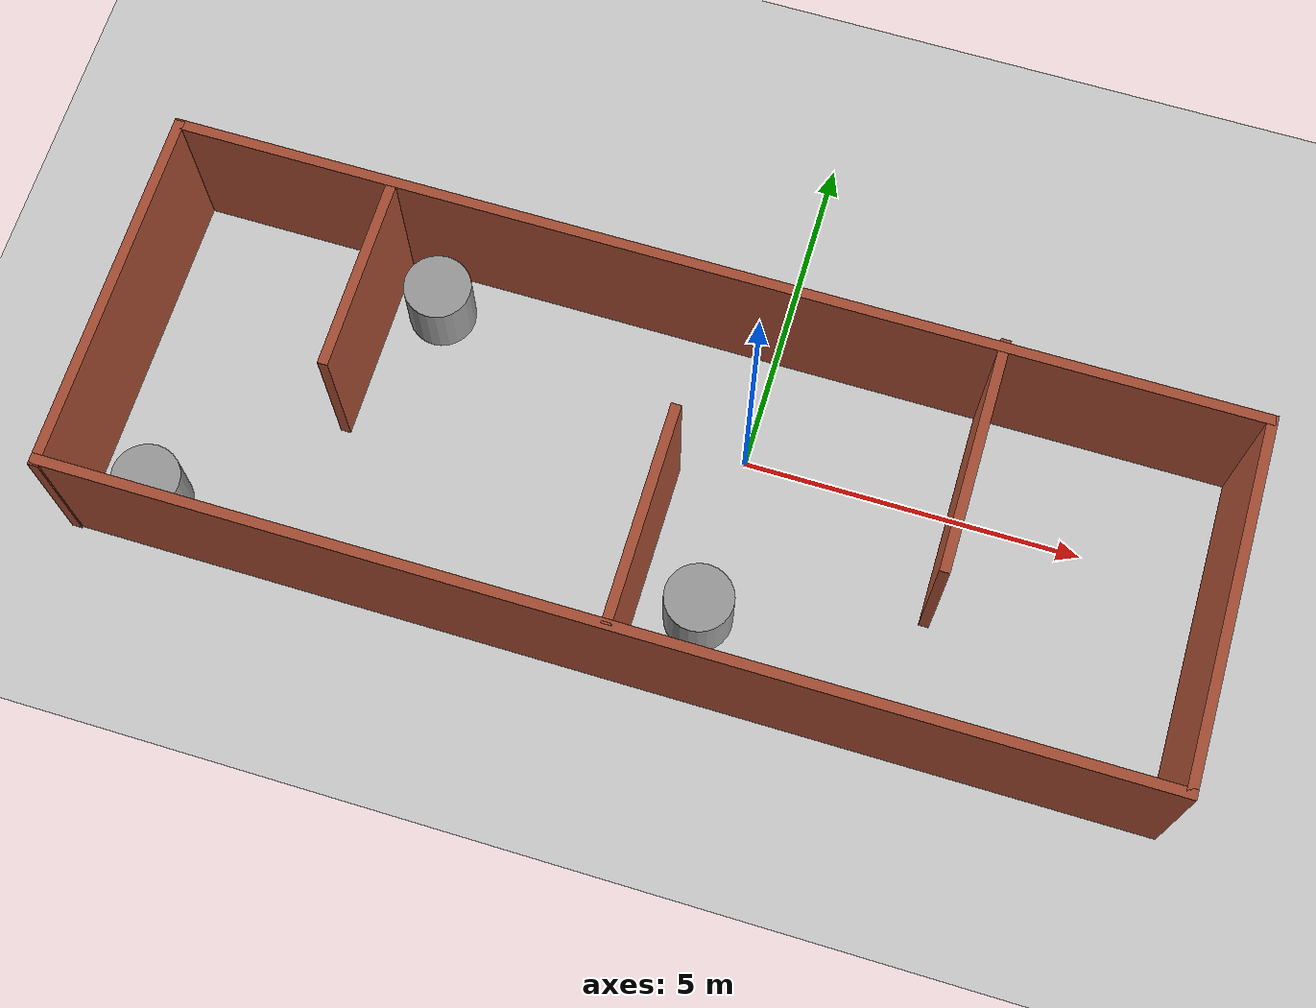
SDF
<sdf version="1.7">
 <world name="default">
  <light name="sun" type="directional">
   <pose>0 0 10 0 -0 0</pose>
   <diffuse>0.8 0.8 0.8 1</diffuse>
   <specular>0.2 0.2 0.2 1</specular>
   <attenuation>
    <range>1000</range>
    <constant>0.9</constant>
    <linear>0.01</linear>
    <quadratic>0.001</quadratic>
   </attenuation>
   <direction>-0.5 0.1 -0.9</direction>
   <spot><inner_angle>0</inner_angle><outer_angle>0</outer_angle><falloff>0</falloff></spot>
  </light>
  <model name="ground_plane">
   <static>1</static>
   <link name="link">
    <collision name="collision">
     <geometry><plane><normal>0 0 1</normal><size>100 100</size></plane></geometry>
     <surface>
      <contact><collide_bitmask>65535</collide_bitmask></contact>
      <friction><ode><mu>100</mu><mu2>50</mu2></ode></friction>
     </surface>
    </collision>
    <visual name="visual">
     <cast_shadows>0</cast_shadows>
     <geometry><plane><normal>0 0 1</normal><size>100 100</size></plane></geometry>
     <material>
      <script><uri>file://media/materials/scripts/gazebo.material</uri><name>Gazebo/Grey</name></script>
     </material>
    </visual>
   </link>
  </model>
  <gravity>0 0 -9.8</gravity>
  <magnetic_field>6e-06 2.3e-05 -4.2e-05</magnetic_field>
  <atmosphere type="adiabatic"/>
  <physics type="ode">
   <max_step_size>0.001</max_step_size>
   <real_time_factor>1</real_time_factor>
   <real_time_update_rate>1000</real_time_update_rate>
  </physics>
  <scene><ambient>0.4 0.4 0.4 1</ambient><background>0.7 0.7 0.7 1</background><shadows>1</shadows></scene>
  <spherical_coordinates>
   <surface_model>EARTH_WGS84</surface_model>
   <latitude_deg>0</latitude_deg>
   <longitude_deg>0</longitude_deg>
   <elevation>0</elevation>
   <heading_deg>0</heading_deg>
  </spherical_coordinates>
  <model name="Walls_env1">
   <link name="Wall_13">
    <pose>0.117716 -1.06231 0 0 -0 1.5708</pose>
    <visual name="Wall_13_Visual">
     <pose>0 0 1.25 0 -0 0</pose>
     <geometry><box><size>3.25 0.15 2.5</size></box></geometry>
     <material>
      <script><uri>file://media/materials/scripts/gazebo.material</uri><name>Gazebo/Bricks</name></script>
      <ambient>1 1 1 1</ambient>
      <shader type="pixel"/>
     </material>
     <meta><layer>0</layer></meta>
    </visual>
    <collision name="Wall_13_Collision">
     <pose>0 0 1.25 0 -0 0</pose>
     <geometry><box><size>3.25 0.15 2.5</size></box></geometry>
     <surface>
      <friction>
       <ode><mu>1</mu><mu2>1</mu2><fdir1>0 0 0</fdir1><slip1>0</slip1><slip2>0</slip2></ode>
       <torsional>
        <coefficient>1</coefficient>
        <patch_radius>0</patch_radius>
        <surface_radius>0</surface_radius>
        <use_patch_radius>1</use_patch_radius>
        <ode><slip>0</slip></ode>
       </torsional>
      </friction>
      <bounce><restitution_coefficient>0</restitution_coefficient><threshold>1e+06</threshold></bounce>
      <contact>
       <collide_without_contact>0</collide_without_contact>
       <collide_without_contact_bitmask>1</collide_without_contact_bitmask>
       <collide_bitmask>1</collide_bitmask>
       <ode>
        <soft_cfm>0</soft_cfm>
        <soft_erp>0.2</soft_erp>
        <kp>1e+13</kp>
        <kd>1</kd>
        <max_vel>0.01</max_vel>
        <min_depth>0</min_depth>
       </ode>
       <bullet>
        <split_impulse>1</split_impulse>
        <split_impulse_penetration_threshold>-0.01</split_impulse_penetration_threshold>
        <soft_cfm>0</soft_cfm>
        <soft_erp>0.2</soft_erp>
        <kp>1e+13</kp>
        <kd>1</kd>
       </bullet>
      </contact>
     </surface>
    </collision>
   </link>
   <link name="Wall_19">
    <pose>4.1887 1.03272 0 0 0 -1.5708</pose>
    <visual name="Wall_19_Visual">
     <pose>0 0 1.25 0 -0 0</pose>
     <geometry><box><size>3.5 0.15 2.5</size></box></geometry>
     <material>
      <script><uri>file://media/materials/scripts/gazebo.material</uri><name>Gazebo/Bricks</name></script>
      <ambient>1 1 1 1</ambient>
      <shader type="pixel"/>
     </material>
     <meta><layer>0</layer></meta>
    </visual>
    <collision name="Wall_19_Collision">
     <pose>0 0 1.25 0 -0 0</pose>
     <geometry><box><size>3.5 0.15 2.5</size></box></geometry>
     <surface>
      <friction>
       <ode><mu>1</mu><mu2>1</mu2><fdir1>0 0 0</fdir1><slip1>0</slip1><slip2>0</slip2></ode>
       <torsional>
        <coefficient>1</coefficient>
        <patch_radius>0</patch_radius>
        <surface_radius>0</surface_radius>
        <use_patch_radius>1</use_patch_radius>
        <ode><slip>0</slip></ode>
       </torsional>
      </friction>
      <bounce><restitution_coefficient>0</restitution_coefficient><threshold>1e+06</threshold></bounce>
      <contact>
       <collide_without_contact>0</collide_without_contact>
       <collide_without_contact_bitmask>1</collide_without_contact_bitmask>
       <collide_bitmask>1</collide_bitmask>
       <ode>
        <soft_cfm>0</soft_cfm>
        <soft_erp>0.2</soft_erp>
        <kp>1e+13</kp>
        <kd>1</kd>
        <max_vel>0.01</max_vel>
        <min_depth>0</min_depth>
       </ode>
       <bullet>
        <split_impulse>1</split_impulse>
        <split_impulse_penetration_threshold>-0.01</split_impulse_penetration_threshold>
        <soft_cfm>0</soft_cfm>
        <soft_erp>0.2</soft_erp>
        <kp>1e+13</kp>
        <kd>1</kd>
       </bullet>
      </contact>
     </surface>
    </collision>
   </link>
   <link name="Wall_2">
    <pose>0 -2.68459 0 0 -0 3.14159</pose>
    <visual name="Wall_2_Visual">
     <pose>0 0 1.25 0 -0 0</pose>
     <geometry><box><size>15.9957 0.15 2.5</size></box></geometry>
     <material>
      <script><uri>file://media/materials/scripts/gazebo.material</uri><name>Gazebo/Bricks</name></script>
      <ambient>1 1 1 1</ambient>
      <shader type="pixel"/>
     </material>
     <meta><layer>0</layer></meta>
    </visual>
    <collision name="Wall_2_Collision">
     <pose>0 0 1.25 0 -0 0</pose>
     <geometry><box><size>15.9957 0.15 2.5</size></box></geometry>
     <surface>
      <friction>
       <ode><mu>1</mu><mu2>1</mu2><fdir1>0 0 0</fdir1><slip1>0</slip1><slip2>0</slip2></ode>
       <torsional>
        <coefficient>1</coefficient>
        <patch_radius>0</patch_radius>
        <surface_radius>0</surface_radius>
        <use_patch_radius>1</use_patch_radius>
        <ode><slip>0</slip></ode>
       </torsional>
      </friction>
      <bounce><restitution_coefficient>0</restitution_coefficient><threshold>1e+06</threshold></bounce>
      <contact>
       <collide_without_contact>0</collide_without_contact>
       <collide_without_contact_bitmask>1</collide_without_contact_bitmask>
       <collide_bitmask>1</collide_bitmask>
       <ode>
        <soft_cfm>0</soft_cfm>
        <soft_erp>0.2</soft_erp>
        <kp>1e+13</kp>
        <kd>1</kd>
        <max_vel>0.01</max_vel>
        <min_depth>0</min_depth>
       </ode>
       <bullet>
        <split_impulse>1</split_impulse>
        <split_impulse_penetration_threshold>-0.01</split_impulse_penetration_threshold>
        <soft_cfm>0</soft_cfm>
        <soft_erp>0.2</soft_erp>
        <kp>1e+13</kp>
        <kd>1</kd>
       </bullet>
      </contact>
     </surface>
    </collision>
   </link>
   <link name="Wall_3">
    <pose>-7.92278 -0.032725 0 0 -0 1.5708</pose>
    <visual name="Wall_3_Visual">
     <pose>0 0 1.25 0 -0 0</pose>
     <geometry><box><size>5.5 0.15 2.5</size></box></geometry>
     <material>
      <script><uri>file://media/materials/scripts/gazebo.material</uri><name>Gazebo/Bricks</name></script>
      <ambient>1 1 1 1</ambient>
      <shader type="pixel"/>
     </material>
     <meta><layer>0</layer></meta>
    </visual>
    <collision name="Wall_3_Collision">
     <pose>0 0 1.25 0 -0 0</pose>
     <geometry><box><size>5.5 0.15 2.5</size></box></geometry>
     <surface>
      <friction>
       <ode><mu>1</mu><mu2>1</mu2><fdir1>0 0 0</fdir1><slip1>0</slip1><slip2>0</slip2></ode>
       <torsional>
        <coefficient>1</coefficient>
        <patch_radius>0</patch_radius>
        <surface_radius>0</surface_radius>
        <use_patch_radius>1</use_patch_radius>
        <ode><slip>0</slip></ode>
       </torsional>
      </friction>
      <bounce><restitution_coefficient>0</restitution_coefficient><threshold>1e+06</threshold></bounce>
      <contact>
       <collide_without_contact>0</collide_without_contact>
       <collide_without_contact_bitmask>1</collide_without_contact_bitmask>
       <collide_bitmask>1</collide_bitmask>
       <ode>
        <soft_cfm>0</soft_cfm>
        <soft_erp>0.2</soft_erp>
        <kp>1e+13</kp>
        <kd>1</kd>
        <max_vel>0.01</max_vel>
        <min_depth>0</min_depth>
       </ode>
       <bullet>
        <split_impulse>1</split_impulse>
        <split_impulse_penetration_threshold>-0.01</split_impulse_penetration_threshold>
        <soft_cfm>0</soft_cfm>
        <soft_erp>0.2</soft_erp>
        <kp>1e+13</kp>
        <kd>1</kd>
       </bullet>
      </contact>
     </surface>
    </collision>
   </link>
   <link name="Wall_4">
    <pose>0 2.66541 0 0 -0 0</pose>
    <visual name="Wall_4_Visual">
     <pose>0 0 1.25 0 -0 0</pose>
     <geometry><box><size>15.9957 0.15 2.5</size></box></geometry>
     <material>
      <script><uri>file://media/materials/scripts/gazebo.material</uri><name>Gazebo/Bricks</name></script>
      <ambient>1 1 1 1</ambient>
      <shader type="pixel"/>
     </material>
     <meta><layer>0</layer></meta>
    </visual>
    <collision name="Wall_4_Collision">
     <pose>0 0 1.25 0 -0 0</pose>
     <geometry><box><size>15.9957 0.15 2.5</size></box></geometry>
     <surface>
      <friction>
       <ode><mu>1</mu><mu2>1</mu2><fdir1>0 0 0</fdir1><slip1>0</slip1><slip2>0</slip2></ode>
       <torsional>
        <coefficient>1</coefficient>
        <patch_radius>0</patch_radius>
        <surface_radius>0</surface_radius>
        <use_patch_radius>1</use_patch_radius>
        <ode><slip>0</slip></ode>
       </torsional>
      </friction>
      <bounce><restitution_coefficient>0</restitution_coefficient><threshold>1e+06</threshold></bounce>
      <contact>
       <collide_without_contact>0</collide_without_contact>
       <collide_without_contact_bitmask>1</collide_without_contact_bitmask>
       <collide_bitmask>1</collide_bitmask>
       <ode>
        <soft_cfm>0</soft_cfm>
        <soft_erp>0.2</soft_erp>
        <kp>1e+13</kp>
        <kd>1</kd>
        <max_vel>0.01</max_vel>
        <min_depth>0</min_depth>
       </ode>
       <bullet>
        <split_impulse>1</split_impulse>
        <split_impulse_penetration_threshold>-0.01</split_impulse_penetration_threshold>
        <soft_cfm>0</soft_cfm>
        <soft_erp>0.2</soft_erp>
        <kp>1e+13</kp>
        <kd>1</kd>
       </bullet>
      </contact>
     </surface>
    </collision>
   </link>
   <link name="Wall_5">
    <pose>7.92278 -0.009595 0 0 0 -1.5708</pose>
    <visual name="Wall_5_Visual">
     <pose>0 0 1.25 0 -0 0</pose>
     <geometry><box><size>5.5 0.15 2.5</size></box></geometry>
     <material>
      <script><uri>file://media/materials/scripts/gazebo.material</uri><name>Gazebo/Bricks</name></script>
      <ambient>1 1 1 1</ambient>
      <shader type="pixel"/>
     </material>
     <meta><layer>0</layer></meta>
    </visual>
    <collision name="Wall_5_Collision">
     <pose>0 0 1.25 0 -0 0</pose>
     <geometry><box><size>5.5 0.15 2.5</size></box></geometry>
     <surface>
      <friction>
       <ode><mu>1</mu><mu2>1</mu2><fdir1>0 0 0</fdir1><slip1>0</slip1><slip2>0</slip2></ode>
       <torsional>
        <coefficient>1</coefficient>
        <patch_radius>0</patch_radius>
        <surface_radius>0</surface_radius>
        <use_patch_radius>1</use_patch_radius>
        <ode><slip>0</slip></ode>
       </torsional>
      </friction>
      <bounce><restitution_coefficient>0</restitution_coefficient><threshold>1e+06</threshold></bounce>
      <contact>
       <collide_without_contact>0</collide_without_contact>
       <collide_without_contact_bitmask>1</collide_without_contact_bitmask>
       <collide_bitmask>1</collide_bitmask>
       <ode>
        <soft_cfm>0</soft_cfm>
        <soft_erp>0.2</soft_erp>
        <kp>1e+13</kp>
        <kd>1</kd>
        <max_vel>0.01</max_vel>
        <min_depth>0</min_depth>
       </ode>
       <bullet>
        <split_impulse>1</split_impulse>
        <split_impulse_penetration_threshold>-0.01</split_impulse_penetration_threshold>
        <soft_cfm>0</soft_cfm>
        <soft_erp>0.2</soft_erp>
        <kp>1e+13</kp>
        <kd>1</kd>
       </bullet>
      </contact>
     </surface>
    </collision>
   </link>
   <link name="Wall_7">
    <pose>-4.69345 1.23646 0 0 0 -1.5708</pose>
    <visual name="Wall_7_Visual">
     <pose>0 0 1.25 0 -0 0</pose>
     <geometry><box><size>3 0.15 2.5</size></box></geometry>
     <material>
      <script><uri>file://media/materials/scripts/gazebo.material</uri><name>Gazebo/Bricks</name></script>
      <ambient>1 1 1 1</ambient>
      <shader type="pixel"/>
     </material>
     <meta><layer>0</layer></meta>
    </visual>
    <collision name="Wall_7_Collision">
     <pose>0 0 1.25 0 -0 0</pose>
     <geometry><box><size>3 0.15 2.5</size></box></geometry>
     <surface>
      <friction>
       <ode><mu>1</mu><mu2>1</mu2><fdir1>0 0 0</fdir1><slip1>0</slip1><slip2>0</slip2></ode>
       <torsional>
        <coefficient>1</coefficient>
        <patch_radius>0</patch_radius>
        <surface_radius>0</surface_radius>
        <use_patch_radius>1</use_patch_radius>
        <ode><slip>0</slip></ode>
       </torsional>
      </friction>
      <bounce><restitution_coefficient>0</restitution_coefficient><threshold>1e+06</threshold></bounce>
      <contact>
       <collide_without_contact>0</collide_without_contact>
       <collide_without_contact_bitmask>1</collide_without_contact_bitmask>
       <collide_bitmask>1</collide_bitmask>
       <ode>
        <soft_cfm>0</soft_cfm>
        <soft_erp>0.2</soft_erp>
        <kp>1e+13</kp>
        <kd>1</kd>
        <max_vel>0.01</max_vel>
        <min_depth>0</min_depth>
       </ode>
       <bullet>
        <split_impulse>1</split_impulse>
        <split_impulse_penetration_threshold>-0.01</split_impulse_penetration_threshold>
        <soft_cfm>0</soft_cfm>
        <soft_erp>0.2</soft_erp>
        <kp>1e+13</kp>
        <kd>1</kd>
       </bullet>
      </contact>
     </surface>
    </collision>
   </link>
   <static>1</static>
   <pose>-1.07835 -0.931575 0 0 -0 0</pose>
  </model>
  <model name="unit_cylinder">
   <pose>-5 1 0.5 0 -0 0</pose>
   <link name="link">
    <inertial>
     <mass>1</mass>
     <inertia><ixx>0.145833</ixx><ixy>0</ixy><ixz>0</ixz><iyy>0.145833</iyy><iyz>0</iyz><izz>0.125</izz></inertia>
    </inertial>
    <collision name="collision">
     <geometry><cylinder><radius>0.5</radius><length>1</length></cylinder></geometry>
    </collision>
    <visual name="visual">
     <geometry><cylinder><radius>0.5</radius><length>1</length></cylinder></geometry>
     <material>
      <script><name>Gazebo/Grey</name><uri>file://media/materials/scripts/gazebo.material</uri></script>
     </material>
    </visual>
   </link>
  </model>
  <model name="unit_cylinder_0">
   <pose>0 -2.45724 0.5 0 -0 0</pose>
   <link name="link">
    <inertial>
     <mass>1</mass>
     <inertia><ixx>0.145833</ixx><ixy>0</ixy><ixz>0</ixz><iyy>0.145833</iyy><iyz>0</iyz><izz>0.125</izz></inertia>
    </inertial>
    <collision name="collision">
     <geometry><cylinder><radius>0.5</radius><length>1</length></cylinder></geometry>
    </collision>
    <visual name="visual">
     <geometry><cylinder><radius>0.5</radius><length>1</length></cylinder></geometry>
     <material>
      <script><name>Gazebo/Grey</name><uri>file://media/materials/scripts/gazebo.material</uri></script>
     </material>
    </visual>
   </link>
  </model>
  <model name="unit_cylinder_1">
   <pose>-8 -3 0.5 0 -0 0</pose>
   <link name="link">
    <inertial>
     <mass>1</mass>
     <inertia><ixx>0.145833</ixx><ixy>0</ixy><ixz>0</ixz><iyy>0.145833</iyy><iyz>0</iyz><izz>0.125</izz></inertia>
    </inertial>
    <collision name="collision">
     <geometry><cylinder><radius>0.5</radius><length>1</length></cylinder></geometry>
    </collision>
    <visual name="visual">
     <geometry><cylinder><radius>0.5</radius><length>1</length></cylinder></geometry>
     <material>
      <script><name>Gazebo/Grey</name><uri>file://media/materials/scripts/gazebo.material</uri></script>
     </material>
    </visual>
   </link>
  </model>
 </world>
</sdf>
